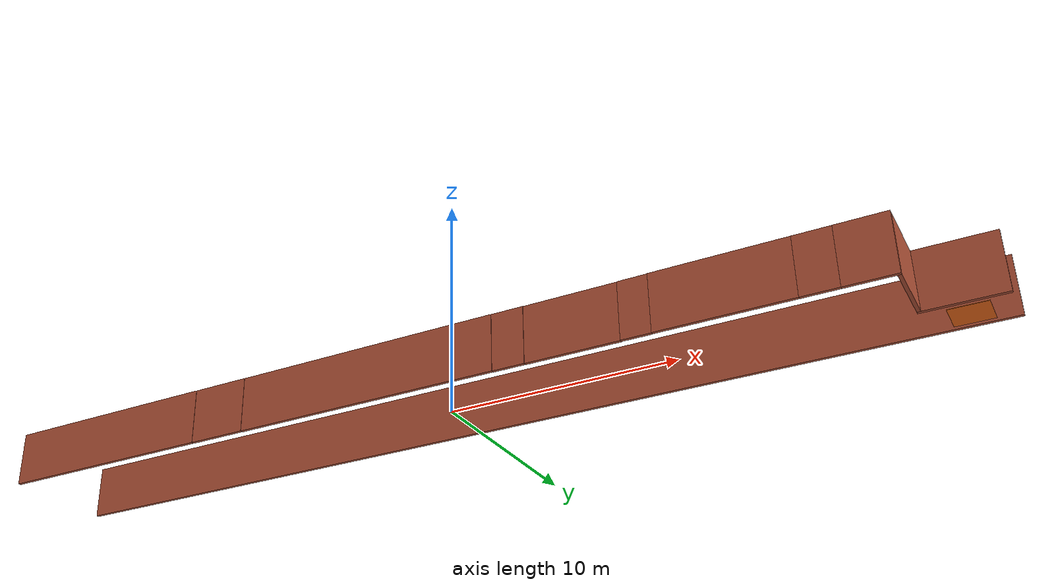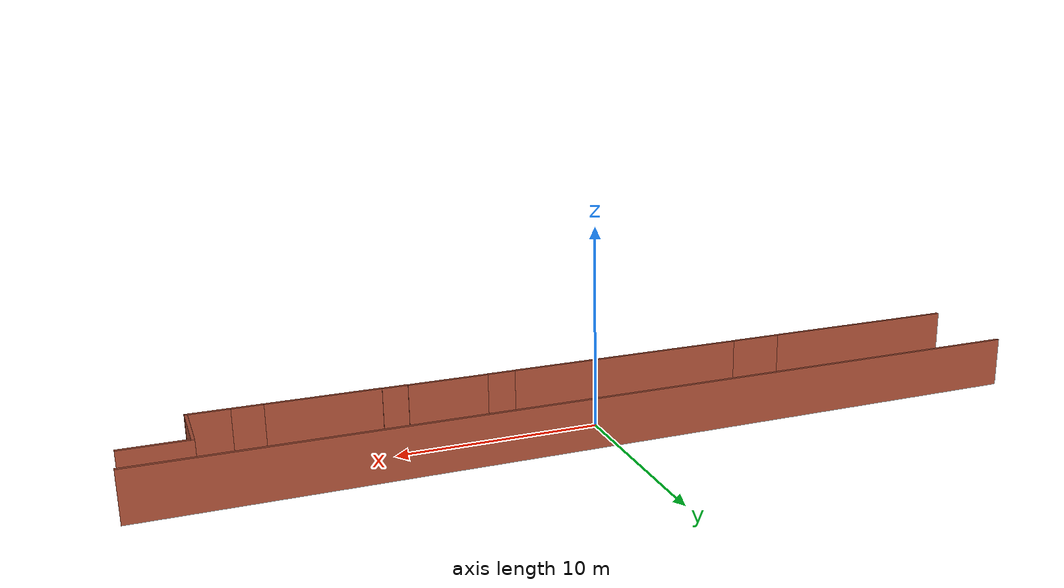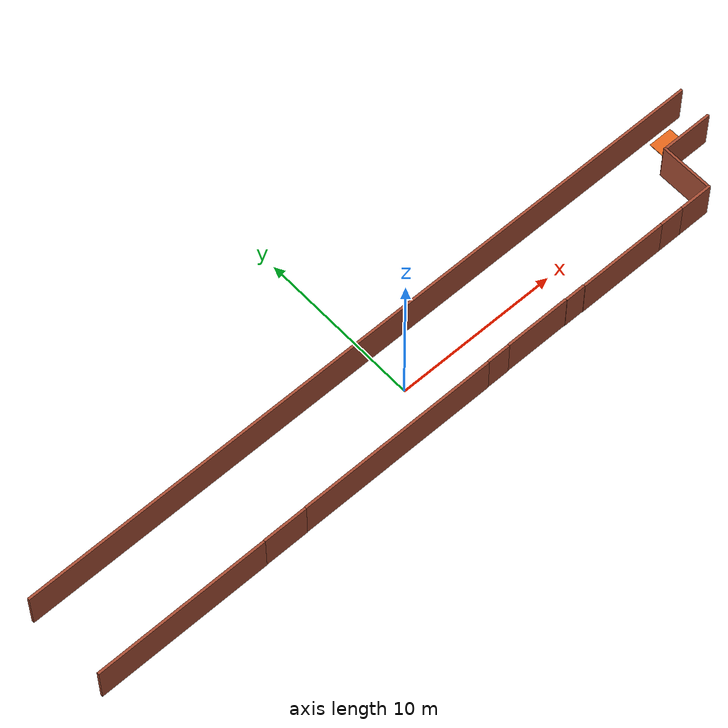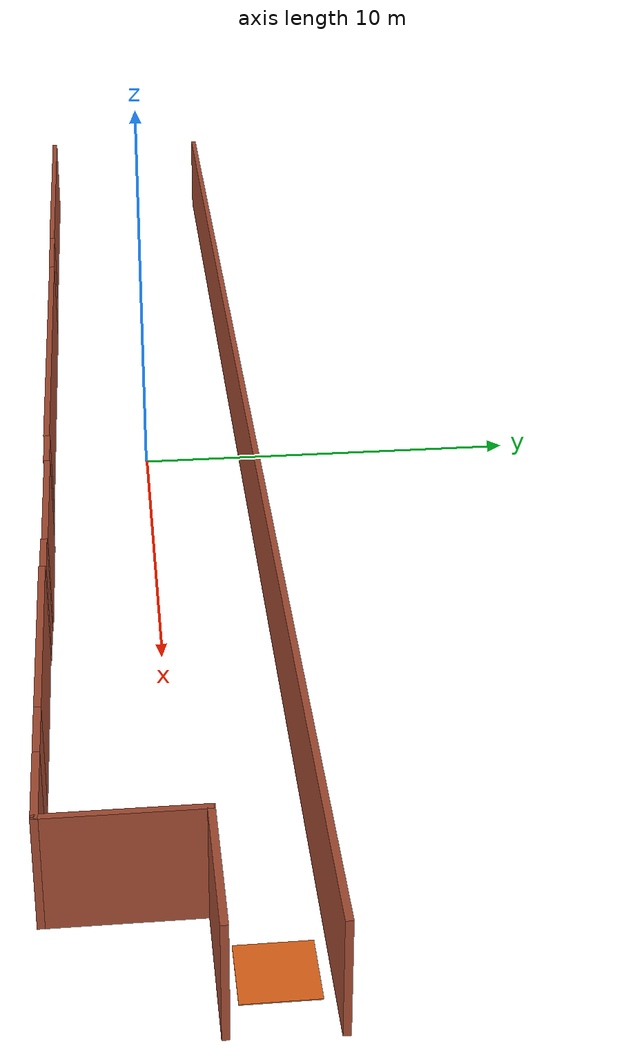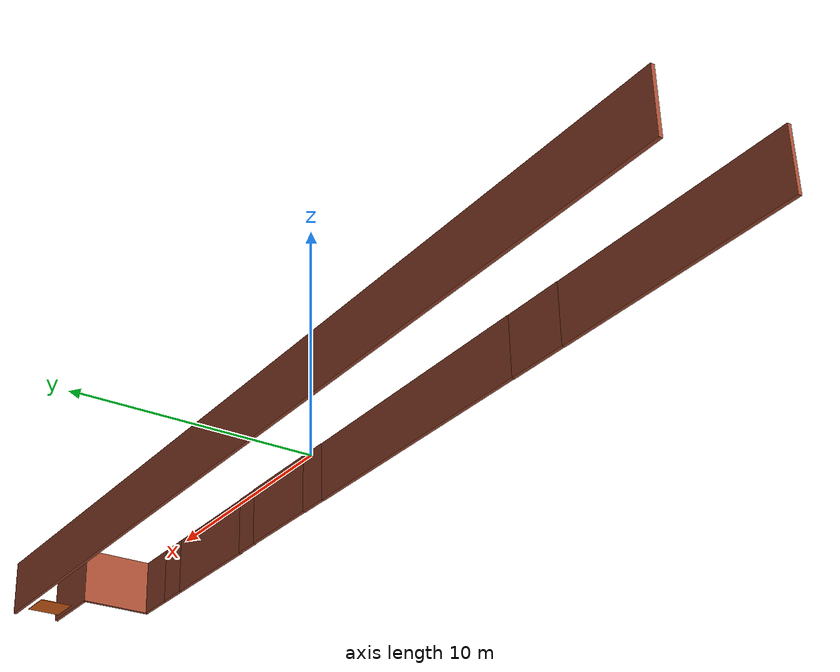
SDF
<?xml version='1.0'?>
<sdf version='1.7'>
  <model name='primer_piso'>
    <pose>0 0 0 0 0 0</pose>
    <link name='Wall_11'>
      <collision name='Wall_11_Collision'>
        <geometry>
          <box>
            <size>5.5 0.15 2.5</size>
          </box>
        </geometry>
        <pose>0 0 1.25 0 -0 0</pose>
        <max_contacts>10</max_contacts>
        <surface>
          <contact>
            <ode/>
          </contact>
          <bounce/>
          <friction>
            <torsional>
              <ode/>
            </torsional>
            <ode/>
          </friction>
        </surface>
      </collision>
      <visual name='Wall_11_Visual'>
        <pose>0 0 1.25 0 -0 0</pose>
        <geometry>
          <box>
            <size>5.5 0.15 2.5</size>
          </box>
        </geometry>
        <material>
          <script>
            <uri>file://media/materials/scripts/gazebo.material</uri>
            <name>Gazebo/Bricks</name>
          </script>
          <ambient>1 1 1 1</ambient>
        </material>
        <meta>
          <layer>0</layer>
        </meta>
      </visual>
      <pose>12.6839 -2.61062 0 0 -0 0</pose>
      <self_collide>0</self_collide>
      <enable_wind>0</enable_wind>
      <kinematic>0</kinematic>
    </link>
    <link name='Wall_13'>
      <collision name='Wall_13_Collision'>
        <geometry>
          <box>
            <size>2.03065 0.15 2.5</size>
          </box>
        </geometry>
        <pose>0 0 1.25 0 -0 0</pose>
        <max_contacts>10</max_contacts>
        <surface>
          <contact>
            <ode/>
          </contact>
          <bounce/>
          <friction>
            <torsional>
              <ode/>
            </torsional>
            <ode/>
          </friction>
        </surface>
      </collision>
      <visual name='Wall_13_Visual'>
        <pose>0 0 1.25 0 -0 0</pose>
        <geometry>
          <box>
            <size>2.03065 0.15 2.5</size>
          </box>
        </geometry>
        <material>
          <script>
            <uri>file://media/materials/scripts/gazebo.material</uri>
            <name>Gazebo/Bricks</name>
          </script>
          <ambient>1 1 1 1</ambient>
        </material>
        <meta>
          <layer>0</layer>
        </meta>
      </visual>
      <pose>17.932 -2.61062 0 0 -0 0</pose>
      <self_collide>0</self_collide>
      <enable_wind>0</enable_wind>
      <kinematic>0</kinematic>
    </link>
    <link name='Wall_15'>
      <collision name='Wall_15_Collision'>
        <geometry>
          <box>
            <size>3.29046 0.15 2.5</size>
          </box>
        </geometry>
        <pose>0 0 1.25 0 -0 0</pose>
        <max_contacts>10</max_contacts>
        <surface>
          <contact>
            <ode/>
          </contact>
          <bounce/>
          <friction>
            <torsional>
              <ode/>
            </torsional>
            <ode/>
          </friction>
        </surface>
      </collision>
      <visual name='Wall_15_Visual'>
        <pose>0 0 1.25 0 -0 0</pose>
        <geometry>
          <box>
            <size>3.29046 0.15 2.5</size>
          </box>
        </geometry>
        <material>
          <script>
            <uri>file://media/materials/scripts/gazebo.material</uri>
            <name>Gazebo/Bricks</name>
          </script>
          <ambient>1 1 1 1</ambient>
        </material>
        <meta>
          <layer>0</layer>
        </meta>
      </visual>
      <pose>18.8723 -1.0251 0 0 -0 1.5708</pose>
      <self_collide>0</self_collide>
      <enable_wind>0</enable_wind>
      <kinematic>0</kinematic>
    </link>
    <link name='Wall_17'>
      <collision name='Wall_17_Collision'>
        <geometry>
          <box>
            <size>44.25 0.15 2.5</size>
          </box>
        </geometry>
        <pose>0 0 1.25 0 -0 0</pose>
        <max_contacts>10</max_contacts>
        <surface>
          <contact>
            <ode/>
          </contact>
          <bounce/>
          <friction>
            <torsional>
              <ode/>
            </torsional>
            <ode/>
          </friction>
        </surface>
      </collision>
      <visual name='Wall_17_Visual'>
        <pose>0 0 1.25 0 -0 0</pose>
        <geometry>
          <box>
            <size>44.25 0.15 2.5</size>
          </box>
        </geometry>
        <material>
          <script>
            <uri>file://media/materials/scripts/gazebo.material</uri>
            <name>Gazebo/Bricks</name>
          </script>
          <ambient>1 1 1 1</ambient>
        </material>
        <meta>
          <layer>0</layer>
        </meta>
      </visual>
      <pose>0.019978 2.63229 0 0 -0 3.14159</pose>
      <self_collide>0</self_collide>
      <enable_wind>0</enable_wind>
      <kinematic>0</kinematic>
    </link>
    <link name='Wall_19'>
      <collision name='Wall_19_Collision'>
        <geometry>
          <box>
            <size>3.25 0.15 2.5</size>
          </box>
        </geometry>
        <pose>0 0 1.25 0 -0 0</pose>
        <max_contacts>10</max_contacts>
        <surface>
          <contact>
            <ode/>
          </contact>
          <bounce/>
          <friction>
            <torsional>
              <ode/>
            </torsional>
            <ode/>
          </friction>
        </surface>
      </collision>
      <visual name='Wall_19_Visual'>
        <pose>0 0 1.25 0 -0 0</pose>
        <geometry>
          <box>
            <size>3.25 0.15 2.5</size>
          </box>
        </geometry>
        <material>
          <script>
            <uri>file://media/materials/scripts/gazebo.material</uri>
            <name>Gazebo/Bricks</name>
          </script>
          <ambient>1 1 1 1</ambient>
        </material>
        <meta>
          <layer>0</layer>
        </meta>
      </visual>
      <pose>20.4223 0.565357 0 0 -0 0</pose>
      <self_collide>0</self_collide>
      <enable_wind>0</enable_wind>
      <kinematic>0</kinematic>
    </link>
    <link name='Wall_5'>
      <collision name='Wall_5_Collision'>
        <geometry>
          <box>
            <size>10.5 0.15 2.5</size>
          </box>
        </geometry>
        <pose>0 0 1.25 0 -0 0</pose>
        <max_contacts>10</max_contacts>
        <surface>
          <contact>
            <ode/>
          </contact>
          <bounce/>
          <friction>
            <torsional>
              <ode/>
            </torsional>
            <ode/>
          </friction>
        </surface>
      </collision>
      <visual name='Wall_5_Visual'>
        <pose>0 0 1.25 0 -0 0</pose>
        <geometry>
          <box>
            <size>10.5 0.15 2.5</size>
          </box>
        </geometry>
        <material>
          <script>
            <uri>file://media/materials/scripts/gazebo.material</uri>
            <name>Gazebo/Bricks</name>
          </script>
          <ambient>1 1 1 1</ambient>
        </material>
        <meta>
          <layer>0</layer>
        </meta>
      </visual>
      <pose>-16.895 -2.63229 0 0 -0 3.14159</pose>
      <self_collide>0</self_collide>
      <enable_wind>0</enable_wind>
      <kinematic>0</kinematic>
    </link>
    <link name='Wall_7'>
      <collision name='Wall_7_Collision'>
        <geometry>
          <box>
            <size>12.25 0.15 2.5</size>
          </box>
        </geometry>
        <pose>0 0 1.25 0 -0 0</pose>
        <max_contacts>10</max_contacts>
        <surface>
          <contact>
            <ode/>
          </contact>
          <bounce/>
          <friction>
            <torsional>
              <ode/>
            </torsional>
            <ode/>
          </friction>
        </surface>
      </collision>
      <visual name='Wall_7_Visual'>
        <pose>0 0 1.25 0 -0 0</pose>
        <geometry>
          <box>
            <size>12.25 0.15 2.5</size>
          </box>
        </geometry>
        <material>
          <script>
            <uri>file://media/materials/scripts/gazebo.material</uri>
            <name>Gazebo/Bricks</name>
          </script>
          <ambient>1 1 1 1</ambient>
        </material>
        <meta>
          <layer>0</layer>
        </meta>
      </visual>
      <pose>-2.84667 -2.60442 0 0 -0 3.14159</pose>
      <self_collide>0</self_collide>
      <enable_wind>0</enable_wind>
      <kinematic>0</kinematic>
    </link>
    <link name='Wall_9'>
      <collision name='Wall_9_Collision'>
        <geometry>
          <box>
            <size>4 0.15 2.5</size>
          </box>
        </geometry>
        <pose>0 0 1.25 0 -0 0</pose>
        <max_contacts>10</max_contacts>
        <surface>
          <contact>
            <ode/>
          </contact>
          <bounce/>
          <friction>
            <torsional>
              <ode/>
            </torsional>
            <ode/>
          </friction>
        </surface>
      </collision>
      <visual name='Wall_9_Visual'>
        <pose>0 0 1.25 0 -0 0</pose>
        <geometry>
          <box>
            <size>4 0.15 2.5</size>
          </box>
        </geometry>
        <material>
          <script>
            <uri>file://media/materials/scripts/gazebo.material</uri>
            <name>Gazebo/Bricks</name>
          </script>
          <ambient>1 1 1 1</ambient>
        </material>
        <meta>
          <layer>0</layer>
        </meta>
      </visual>
      <pose>6.68444 -2.56762 0 0 -0 0</pose>
      <self_collide>0</self_collide>
      <enable_wind>0</enable_wind>
      <kinematic>0</kinematic>
    </link>
    <link name='Wall_Gap1'>
      <collision name='Wall_Gap1_Collision'>
        <geometry>
          <box>
            <size>2.6733 0.15 2.5</size>
          </box>
        </geometry>
        <pose>0 0 1.25 0 -0 0</pose>
        <max_contacts>10</max_contacts>
        <surface>
          <contact><ode/></contact>
          <bounce/>
          <friction><torsional><ode/></torsional><ode/></friction>
        </surface>
      </collision>
      <visual name='Wall_Gap1_Visual'>
        <pose>0 0 1.25 0 -0 0</pose>
        <geometry>
          <box>
            <size>2.6733 0.15 2.5</size>
          </box>
        </geometry>
        <material>
          <script>
            <uri>file://media/materials/scripts/gazebo.material</uri>
            <name>Gazebo/Bricks</name>
          </script>
          <ambient>1 1 1 1</ambient>
        </material>
        <meta><layer>0</layer></meta>
      </visual>
      <pose>-10.30833 -2.61836 0 0 -0 0</pose>
      <self_collide>0</self_collide>
      <enable_wind>0</enable_wind>
      <kinematic>0</kinematic>
    </link>
    <link name='Wall_Gap2'>
      <collision name='Wall_Gap2_Collision'>
        <geometry>
          <box>
            <size>1.4061 0.15 2.5</size>
          </box>
        </geometry>
        <pose>0 0 1.25 0 -0 0</pose>
        <max_contacts>10</max_contacts>
        <surface>
          <contact><ode/></contact>
          <bounce/>
          <friction><torsional><ode/></torsional><ode/></friction>
        </surface>
      </collision>
      <visual name='Wall_Gap2_Visual'>
        <pose>0 0 1.25 0 -0 0</pose>
        <geometry>
          <box>
            <size>1.4061 0.15 2.5</size>
          </box>
        </geometry>
        <material>
          <script>
            <uri>file://media/materials/scripts/gazebo.material</uri>
            <name>Gazebo/Bricks</name>
          </script>
          <ambient>1 1 1 1</ambient>
        </material>
        <meta><layer>0</layer></meta>
      </visual>
      <pose>3.98139 -2.58602 0 0 -0 0</pose>
      <self_collide>0</self_collide>
      <enable_wind>0</enable_wind>
      <kinematic>0</kinematic>
    </link>
    <link name='Wall_Gap3'>
      <collision name='Wall_Gap3_Collision'>
        <geometry>
          <box>
            <size>1.2495 0.15 2.5</size>
          </box>
        </geometry>
        <pose>0 0 1.25 0 -0 0</pose>
        <max_contacts>10</max_contacts>
        <surface>
          <contact><ode/></contact>
          <bounce/>
          <friction><torsional><ode/></torsional><ode/></friction>
        </surface>
      </collision>
      <visual name='Wall_Gap3_Visual'>
        <pose>0 0 1.25 0 -0 0</pose>
        <geometry>
          <box>
            <size>1.2495 0.15 2.5</size>
          </box>
        </geometry>
        <material>
          <script>
            <uri>file://media/materials/scripts/gazebo.material</uri>
            <name>Gazebo/Bricks</name>
          </script>
          <ambient>1 1 1 1</ambient>
        </material>
        <meta><layer>0</layer></meta>
      </visual>
      <pose>9.30917 -2.58912 0 0 -0 0</pose>
      <self_collide>0</self_collide>
      <enable_wind>0</enable_wind>
      <kinematic>0</kinematic>
    </link>
    <link name='Wall_Gap4'>
      <collision name='Wall_Gap4_Collision'>
        <geometry>
          <box>
            <size>1.4828 0.15 2.5</size>
          </box>
        </geometry>
        <pose>0 0 1.25 0 -0 0</pose>
        <max_contacts>10</max_contacts>
        <surface>
          <contact><ode/></contact>
          <bounce/>
          <friction><torsional><ode/></torsional><ode/></friction>
        </surface>
      </collision>
      <visual name='Wall_Gap4_Visual'>
        <pose>0 0 1.25 0 -0 0</pose>
        <geometry>
          <box>
            <size>1.4828 0.15 2.5</size>
          </box>
        </geometry>
        <material>
          <script>
            <uri>file://media/materials/scripts/gazebo.material</uri>
            <name>Gazebo/Bricks</name>
          </script>
          <ambient>1 1 1 1</ambient>
        </material>
        <meta><layer>0</layer></meta>
      </visual>
      <pose>16.17529 -2.61062 0 0 -0 0</pose>
      <self_collide>0</self_collide>
      <enable_wind>0</enable_wind>
      <kinematic>0</kinematic>
    </link>
    <link name='zona_transicion'>
      <pose>20.4964 1.59437 0.01 0 0 0</pose>
      <visual name='zona_transicion_visual'>
        <geometry>
          <box>
            <size>1.5 1.5 0.02</size>
          </box>
        </geometry>
        <material>
          <ambient>0.9 0.4 0.1 1</ambient>
          <diffuse>0.9 0.4 0.1 1</diffuse>
        </material>
      </visual>
    </link>
    <static>1</static>
  </model>
</sdf>
